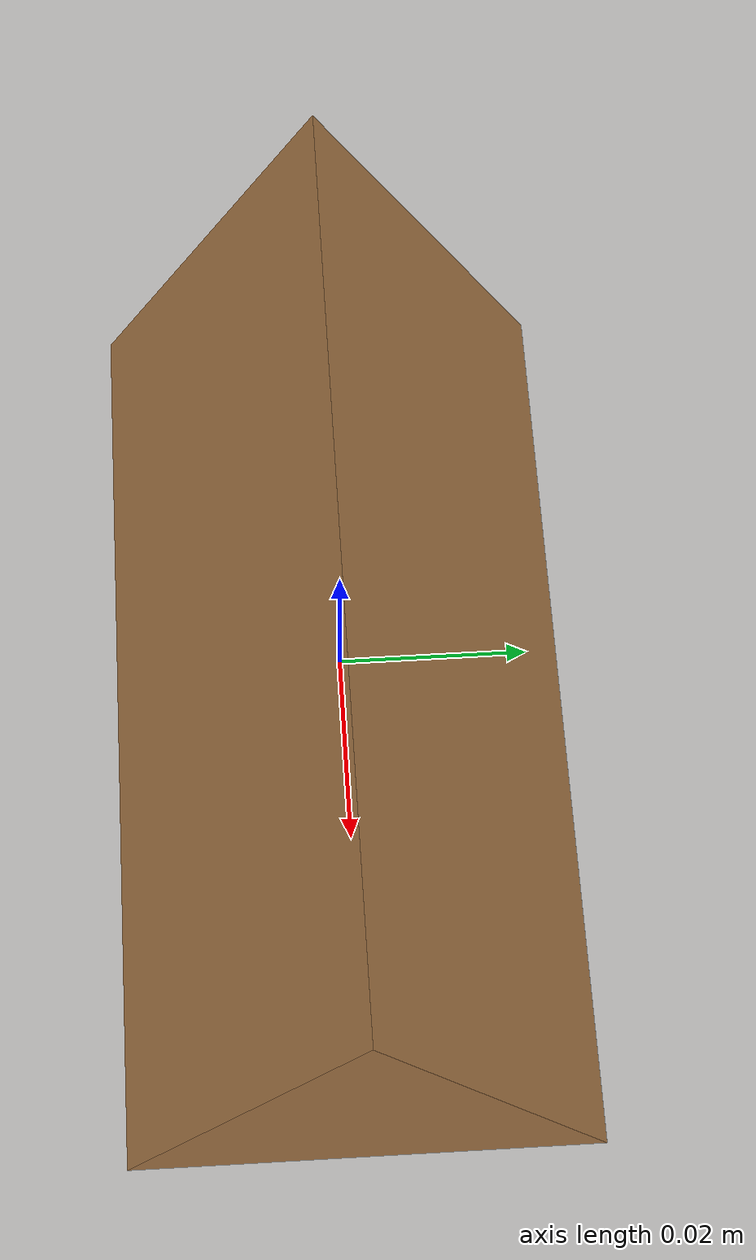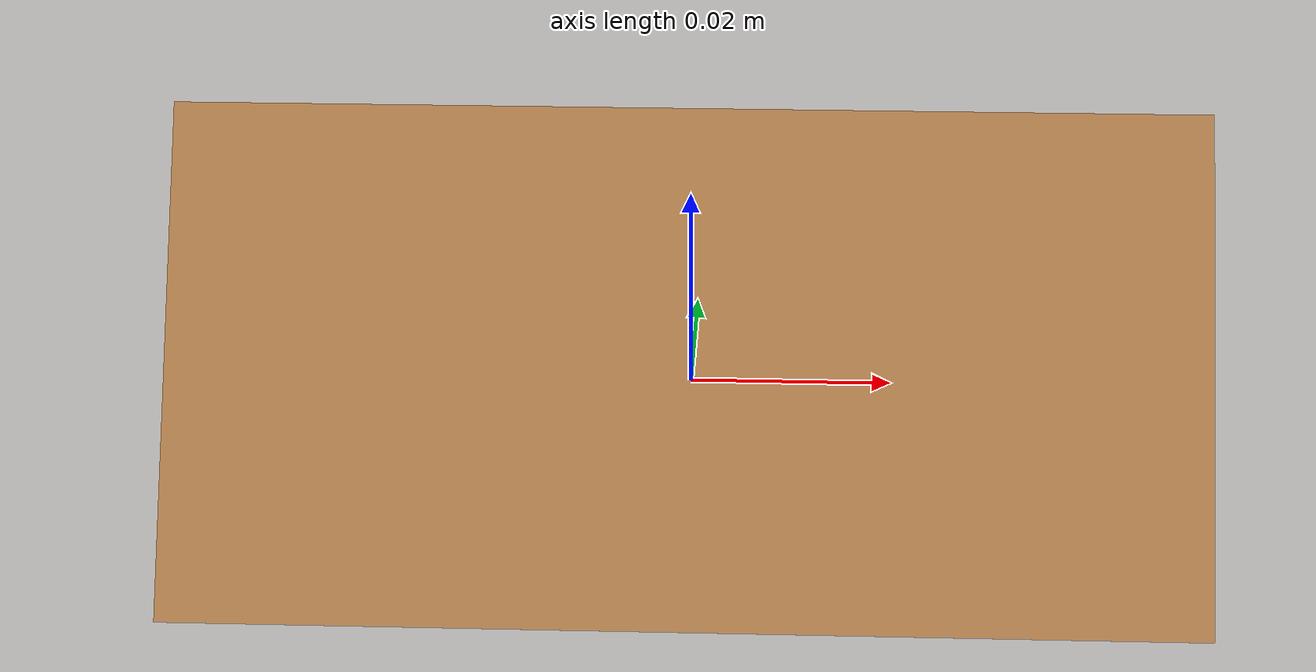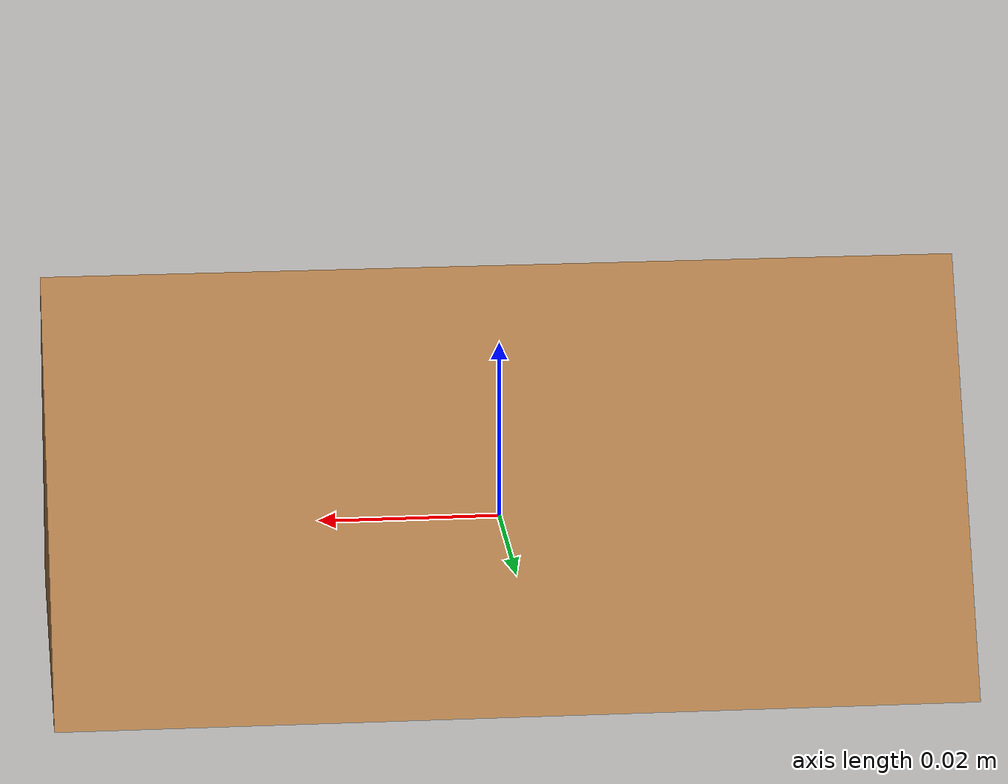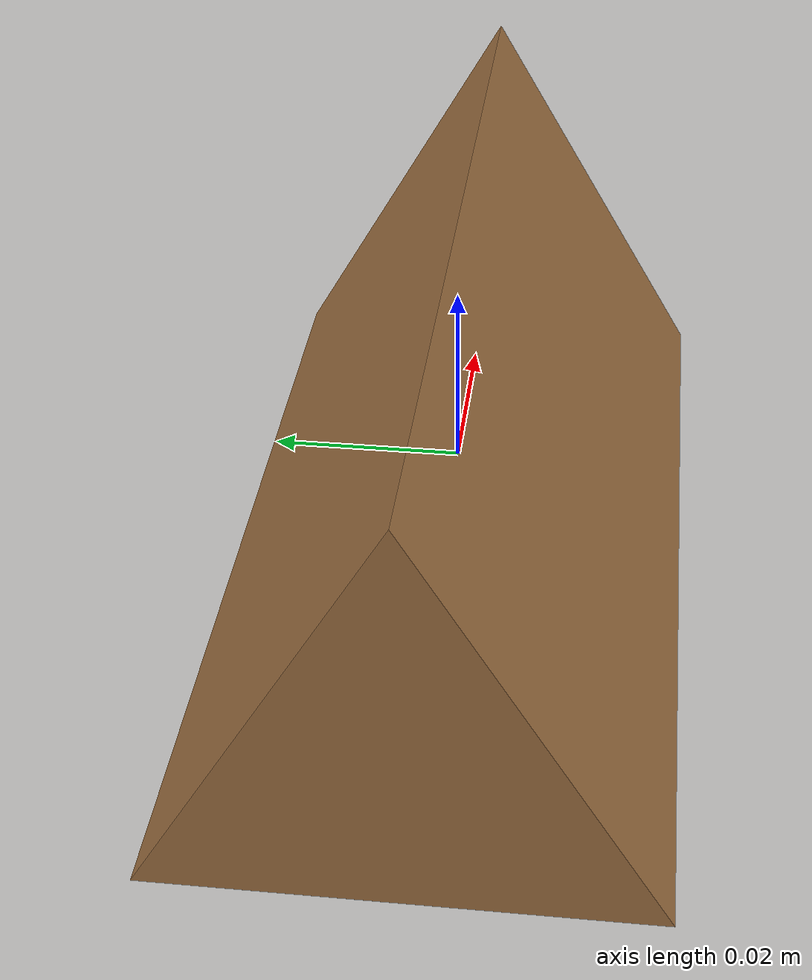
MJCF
<mujoco model="bottle">
  <asset>
    <mesh file="triangular_prism_5cm.stl" name="triangular_prism_mesh"/>
    <texture type="cube" file="../../textures/red-wood.png" name="red-wood"/>
    <material name="triangular_prism_mat" reflectance="0.5" texrepeat="5 5" texture="red-wood" texuniform="true"/>
  </asset>
  <worldbody>
    <body>
      <body name="object">
        <geom pos="0 0 0" mesh="triangular_prism_mesh" type="mesh" solimp="0.998 0.998 0.001" solref="0.001 1" density="100" friction="0.95 0.3 0.1" material="triangular_prism_mat" group="0" condim="4"/>
        <geom pos="0 0 0" mesh="triangular_prism_mesh" type="mesh" rgba="0.8 0.8 0.8 0.3"  conaffinity="0" contype="0" group="1" mass="0.0001"/>
      </body>
      <site rgba="0 0 0 0" size="0.005" pos="0 0 -0.02165" name="bottom_site"/>
      <site rgba="0 0 0 0" size="0.005" pos="0 0 0.02165" name="top_site"/>
      <site rgba="0 0 0 0" size="0.005" pos="0.0254 0.0254 0" name="horizontal_radius_site"/>
    </body>
  </worldbody>
</mujoco>
